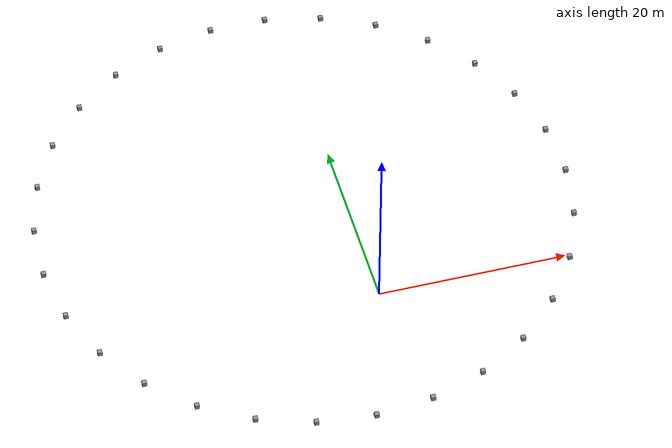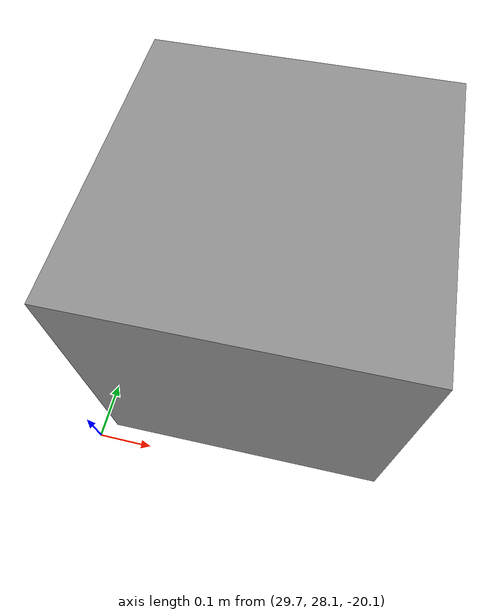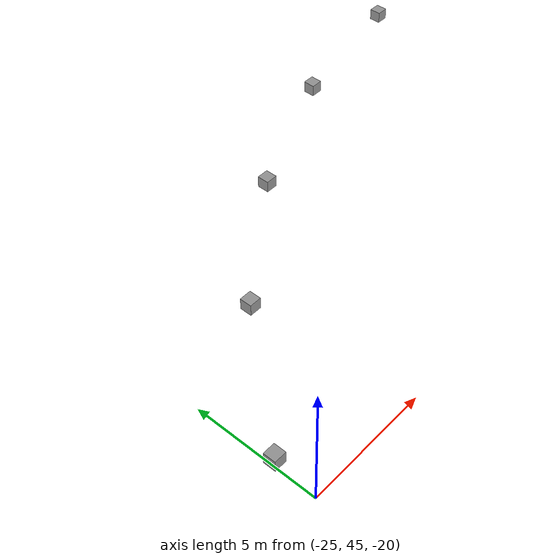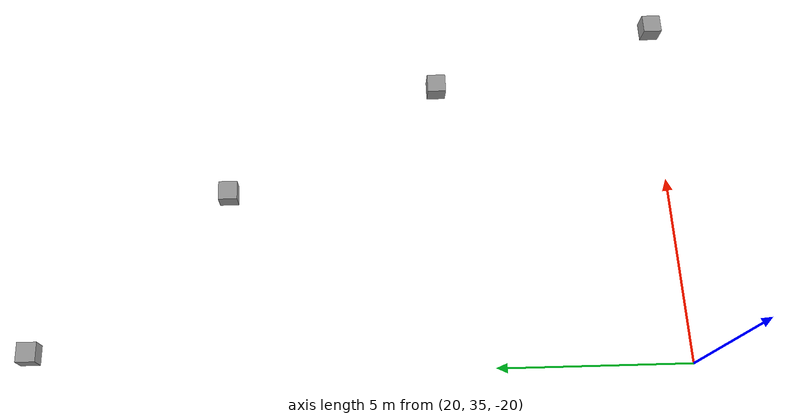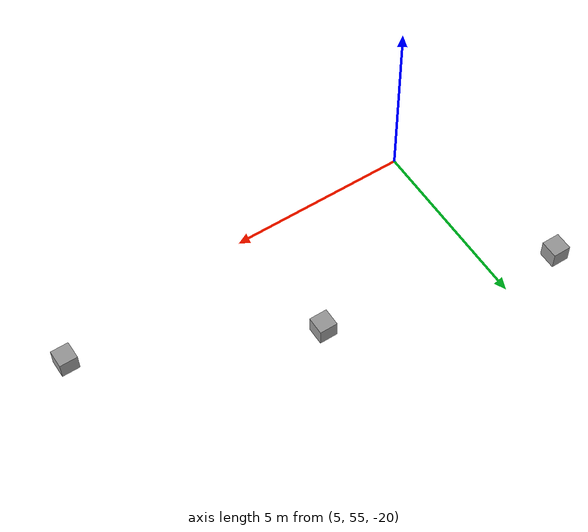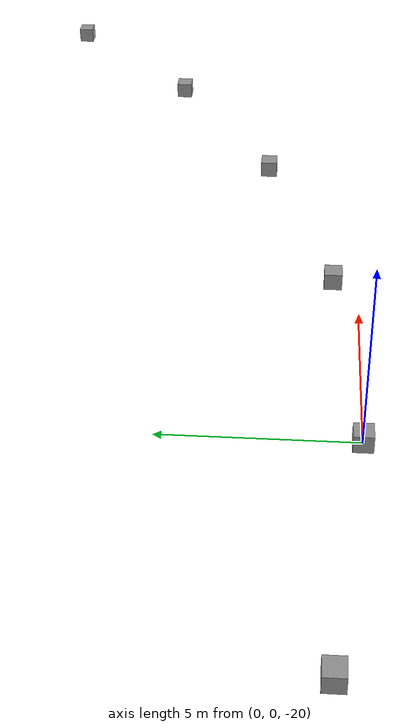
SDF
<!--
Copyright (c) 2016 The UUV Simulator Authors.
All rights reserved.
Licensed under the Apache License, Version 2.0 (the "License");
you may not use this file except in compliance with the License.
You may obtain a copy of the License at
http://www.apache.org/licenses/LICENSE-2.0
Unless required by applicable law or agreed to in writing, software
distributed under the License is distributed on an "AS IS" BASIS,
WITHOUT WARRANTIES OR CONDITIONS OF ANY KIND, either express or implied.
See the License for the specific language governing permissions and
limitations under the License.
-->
<sdf version="1.4">
 <world name="oceans_waves">
  <physics name="default_physics" default="true" type="ode">
   <max_step_size>0.002</max_step_size>
   <real_time_factor>1</real_time_factor>
   <real_time_update_rate>500</real_time_update_rate>
  </physics>
  <scene>
   <ambient>0.01 0.01 0.01 1.0</ambient>
   <sky><clouds><speed>12</speed></clouds></sky>
   <shadows>1</shadows>
  </scene>
  <spherical_coordinates>
   <latitude_deg>56.71897669633431</latitude_deg>
   <longitude_deg>3.515625</longitude_deg>
  </spherical_coordinates>
  <light type="directional" name="sun1">
   <pose>50 0 150 0 0 0</pose>
   <diffuse>1 1 1 1</diffuse>
   <specular>.1 .1 .1 1</specular>
   <direction>0.3 0.3 -1</direction>
   <cast_shadows>false</cast_shadows>
  </light>
  <light type="directional" name="sun_diffuse">
   <pose>-50 0 -150 0 0 0</pose>
   <diffuse>0.6 0.6 0.6 1</diffuse>
   <specular>0 0 0 1</specular>
   <direction>-0.3 -0.3 -1</direction>
   <cast_shadows>false</cast_shadows>
  </light>
  <model name="visual_obstacle_1">
   <pose>0.019344984088539116 0.00018805105307251324 -19.84525278614261 0 0 0</pose>
   <static>true</static>
   <link name="link">
    <visual name="visual">
     <geometry><box><size>0.5 0.5 0.5</size></box></geometry>
     <material>
      <script><uri>file://media/materials/scripts/gazebo.material</uri><name>Gazebo/Grey</name></script>
     </material>
    </visual>
   </link>
  </model>
  <model name="visual_obstacle_2">
   <pose>6.468471475318647 0.701449216353101 -19.84525278614261 0 0 0</pose>
   <static>true</static>
   <link name="link">
    <visual name="visual">
     <geometry><box><size>0.5 0.5 0.5</size></box></geometry>
     <material>
      <script><uri>file://media/materials/scripts/gazebo.material</uri><name>Gazebo/Grey</name></script>
     </material>
    </visual>
   </link>
  </model>
  <model name="visual_obstacle_3">
   <pose>12.616070551621 2.77268684610263 -19.84525278614261 0 0 0</pose>
   <static>true</static>
   <link name="link">
    <visual name="visual">
     <geometry><box><size>0.5 0.5 0.5</size></box></geometry>
     <material>
      <script><uri>file://media/materials/scripts/gazebo.material</uri><name>Gazebo/Grey</name></script>
     </material>
    </visual>
   </link>
  </model>
  <model name="visual_obstacle_4">
   <pose>18.17468731275332 6.1170521707498615 -19.84525278614261 0 0 0</pose>
   <static>true</static>
   <link name="link">
    <visual name="visual">
     <geometry><box><size>0.5 0.5 0.5</size></box></geometry>
     <material>
      <script><uri>file://media/materials/scripts/gazebo.material</uri><name>Gazebo/Grey</name></script>
     </material>
    </visual>
   </link>
  </model>
  <model name="visual_obstacle_5">
   <pose>22.88440701692387 10.578166384709377 -19.84525278614261 0 0 0</pose>
   <static>true</static>
   <link name="link">
    <visual name="visual">
     <geometry><box><size>0.5 0.5 0.5</size></box></geometry>
     <material>
      <script><uri>file://media/materials/scripts/gazebo.material</uri><name>Gazebo/Grey</name></script>
     </material>
    </visual>
   </link>
  </model>
  <model name="visual_obstacle_6">
   <pose>26.52500840524313 15.947432745508767 -19.84525278614261 0 0 0</pose>
   <static>true</static>
   <link name="link">
    <visual name="visual">
     <geometry><box><size>0.5 0.5 0.5</size></box></geometry>
     <material>
      <script><uri>file://media/materials/scripts/gazebo.material</uri><name>Gazebo/Grey</name></script>
     </material>
    </visual>
   </link>
  </model>
  <model name="visual_obstacle_7">
   <pose>28.926261003031104 21.973790325627995 -19.84525278614261 0 0 0</pose>
   <static>true</static>
   <link name="link">
    <visual name="visual">
     <geometry><box><size>0.5 0.5 0.5</size></box></geometry>
     <material>
      <script><uri>file://media/materials/scripts/gazebo.material</uri><name>Gazebo/Grey</name></script>
     </material>
    </visual>
   </link>
  </model>
  <model name="visual_obstacle_8">
   <pose>29.975884907615814 28.37545334243607 -19.84525278614261 0 0 0</pose>
   <static>true</static>
   <link name="link">
    <visual name="visual">
     <geometry><box><size>0.5 0.5 0.5</size></box></geometry>
     <material>
      <script><uri>file://media/materials/scripts/gazebo.material</uri><name>Gazebo/Grey</name></script>
     </material>
    </visual>
   </link>
  </model>
  <model name="visual_obstacle_9">
   <pose>29.624800871792065 34.85308714820447 -19.84525278614261 0 0 0</pose>
   <static>true</static>
   <link name="link">
    <visual name="visual">
     <geometry><box><size>0.5 0.5 0.5</size></box></geometry>
     <material>
      <script><uri>file://media/materials/scripts/gazebo.material</uri><name>Gazebo/Grey</name></script>
     </material>
    </visual>
   </link>
  </model>
  <model name="visual_obstacle_10">
   <pose>27.889425194873088 41.10380478554836 -19.84525278614261 0 0 0</pose>
   <static>true</static>
   <link name="link">
    <visual name="visual">
     <geometry><box><size>0.5 0.5 0.5</size></box></geometry>
     <material>
      <script><uri>file://media/materials/scripts/gazebo.material</uri><name>Gazebo/Grey</name></script>
     </material>
    </visual>
   </link>
  </model>
  <model name="visual_obstacle_11">
   <pose>24.85090211478008 46.835329644919206 -19.84525278614261 0 0 0</pose>
   <static>true</static>
   <link name="link">
    <visual name="visual">
     <geometry><box><size>0.5 0.5 0.5</size></box></geometry>
     <material>
      <script><uri>file://media/materials/scripts/gazebo.material</uri><name>Gazebo/Grey</name></script>
     </material>
    </visual>
   </link>
  </model>
  <model name="visual_obstacle_12">
   <pose>20.651309593662344 51.7796619940252 -19.84525278614261 0 0 0</pose>
   <static>true</static>
   <link name="link">
    <visual name="visual">
     <geometry><box><size>0.5 0.5 0.5</size></box></geometry>
     <material>
      <script><uri>file://media/materials/scripts/gazebo.material</uri><name>Gazebo/Grey</name></script>
     </material>
    </visual>
   </link>
  </model>
  <model name="visual_obstacle_13">
   <pose>15.487015910295494 55.70561034745285 -19.84525278614261 0 0 0</pose>
   <static>true</static>
   <link name="link">
    <visual name="visual">
     <geometry><box><size>0.5 0.5 0.5</size></box></geometry>
     <material>
      <script><uri>file://media/materials/scripts/gazebo.material</uri><name>Gazebo/Grey</name></script>
     </material>
    </visual>
   </link>
  </model>
  <model name="visual_obstacle_14">
   <pose>9.59949769761358 58.429601723574066 -19.84525278614261 0 0 0</pose>
   <static>true</static>
   <link name="link">
    <visual name="visual">
     <geometry><box><size>0.5 0.5 0.5</size></box></geometry>
     <material>
      <script><uri>file://media/materials/scripts/gazebo.material</uri><name>Gazebo/Grey</name></script>
     </material>
    </visual>
   </link>
  </model>
  <model name="visual_obstacle_15">
   <pose>3.2640487637351163 59.8242653131404 -19.84525278614261 0 0 0</pose>
   <static>true</static>
   <link name="link">
    <visual name="visual">
     <geometry><box><size>0.5 0.5 0.5</size></box></geometry>
     <material>
      <script><uri>file://media/materials/scripts/gazebo.material</uri><name>Gazebo/Grey</name></script>
     </material>
    </visual>
   </link>
  </model>
  <model name="visual_obstacle_16">
   <pose>-3.2230923405375345 59.82438819676099 -19.84525278614261 0 0 0</pose>
   <static>true</static>
   <link name="link">
    <visual name="visual">
     <geometry><box><size>0.5 0.5 0.5</size></box></geometry>
     <material>
      <script><uri>file://media/materials/scripts/gazebo.material</uri><name>Gazebo/Grey</name></script>
     </material>
    </visual>
   </link>
  </model>
  <model name="visual_obstacle_17">
   <pose>-9.558594107108036 58.42996462853429 -19.84525278614261 0 0 0</pose>
   <static>true</static>
   <link name="link">
    <visual name="visual">
     <geometry><box><size>0.5 0.5 0.5</size></box></geometry>
     <material>
      <script><uri>file://media/materials/scripts/gazebo.material</uri><name>Gazebo/Grey</name></script>
     </material>
    </visual>
   </link>
  </model>
  <model name="visual_obstacle_18">
   <pose>-15.44621551477602 55.70619630472012 -19.84525278614261 0 0 0</pose>
   <static>true</static>
   <link name="link">
    <visual name="visual">
     <geometry><box><size>0.5 0.5 0.5</size></box></geometry>
     <material>
      <script><uri>file://media/materials/scripts/gazebo.material</uri><name>Gazebo/Grey</name></script>
     </material>
    </visual>
   </link>
  </model>
  <model name="visual_obstacle_19">
   <pose>-20.610657930140178 51.78044360488894 -19.84525278614261 0 0 0</pose>
   <static>true</static>
   <link name="link">
    <visual name="visual">
     <geometry><box><size>0.5 0.5 0.5</size></box></geometry>
     <material>
      <script><uri>file://media/materials/scripts/gazebo.material</uri><name>Gazebo/Grey</name></script>
     </material>
    </visual>
   </link>
  </model>
  <model name="visual_obstacle_20">
   <pose>-24.81043776572352 46.83627036212414 -19.84525278614261 0 0 0</pose>
   <static>true</static>
   <link name="link">
    <visual name="visual">
     <geometry><box><size>0.5 0.5 0.5</size></box></geometry>
     <material>
      <script><uri>file://media/materials/scripts/gazebo.material</uri><name>Gazebo/Grey</name></script>
     </material>
    </visual>
   </link>
  </model>
  <model name="visual_obstacle_21">
   <pose>-27.849177984134233 41.104860622203496 -19.84525278614261 0 0 0</pose>
   <static>true</static>
   <link name="link">
    <visual name="visual">
     <geometry><box><size>0.5 0.5 0.5</size></box></geometry>
     <material>
      <script><uri>file://media/materials/scripts/gazebo.material</uri><name>Gazebo/Grey</name></script>
     </material>
    </visual>
   </link>
  </model>
  <model name="visual_obstacle_22">
   <pose>-29.584790470076598 34.8542087345613 -19.84525278614261 0 0 0</pose>
   <static>true</static>
   <link name="link">
    <visual name="visual">
     <geometry><box><size>0.5 0.5 0.5</size></box></geometry>
     <material>
      <script><uri>file://media/materials/scripts/gazebo.material</uri><name>Gazebo/Grey</name></script>
     </material>
    </visual>
   </link>
  </model>
  <model name="visual_obstacle_23">
   <pose>-29.93611991270269 28.37658823436312 -19.84525278614261 0 0 0</pose>
   <static>true</static>
   <link name="link">
    <visual name="visual">
     <geometry><box><size>0.5 0.5 0.5</size></box></geometry>
     <material>
      <script><uri>file://media/materials/scripts/gazebo.material</uri><name>Gazebo/Grey</name></script>
     </material>
    </visual>
   </link>
  </model>
  <model name="visual_obstacle_24">
   <pose>-28.88673853774993 21.97488545684005 -19.84525278614261 0 0 0</pose>
   <static>true</static>
   <link name="link">
    <visual name="visual">
     <geometry><box><size>0.5 0.5 0.5</size></box></geometry>
     <material>
      <script><uri>file://media/materials/scripts/gazebo.material</uri><name>Gazebo/Grey</name></script>
     </material>
    </visual>
   </link>
  </model>
  <model name="visual_obstacle_25">
   <pose>-26.4857142520075 15.948436908887556 -19.84525278614261 0 0 0</pose>
   <static>true</static>
   <link name="link">
    <visual name="visual">
     <geometry><box><size>0.5 0.5 0.5</size></box></geometry>
     <material>
      <script><uri>file://media/materials/scripts/gazebo.material</uri><name>Gazebo/Grey</name></script>
     </material>
    </visual>
   </link>
  </model>
  <model name="visual_obstacle_26">
   <pose>-22.845316282529865 10.579032626691333 -19.84525278614261 0 0 0</pose>
   <static>true</static>
   <link name="link">
    <visual name="visual">
     <geometry><box><size>0.5 0.5 0.5</size></box></geometry>
     <material>
      <script><uri>file://media/materials/scripts/gazebo.material</uri><name>Gazebo/Grey</name></script>
     </material>
    </visual>
   </link>
  </model>
  <model name="visual_obstacle_27">
   <pose>-18.13576559235807 6.117739986822663 -19.84525278614261 0 0 0</pose>
   <static>true</static>
   <link name="link">
    <visual name="visual">
     <geometry><box><size>0.5 0.5 0.5</size></box></geometry>
     <material>
      <script><uri>file://media/materials/scripts/gazebo.material</uri><name>Gazebo/Grey</name></script>
     </material>
    </visual>
   </link>
  </model>
  <model name="visual_obstacle_28">
   <pose>-12.577275537474897 2.7731640747511683 -19.84525278614261 0 0 0</pose>
   <static>true</static>
   <link name="link">
    <visual name="visual">
     <geometry><box><size>0.5 0.5 0.5</size></box></geometry>
     <material>
      <script><uri>file://media/materials/scripts/gazebo.material</uri><name>Gazebo/Grey</name></script>
     </material>
    </visual>
   </link>
  </model>
  <model name="visual_obstacle_29">
   <pose>-6.429754935028707 0.701693542896173 -19.84525278614261 0 0 0</pose>
   <static>true</static>
   <link name="link">
    <visual name="visual">
     <geometry><box><size>0.5 0.5 0.5</size></box></geometry>
     <material>
      <script><uri>file://media/materials/scripts/gazebo.material</uri><name>Gazebo/Grey</name></script>
     </material>
    </visual>
   </link>
  </model>
  <model name="visual_obstacle_30">
   <pose>0.019344984088531768 0.00018805105307251324 -19.84525278614261 0 0 0</pose>
   <static>true</static>
   <link name="link">
    <visual name="visual">
     <geometry><box><size>0.5 0.5 0.5</size></box></geometry>
     <material>
      <script><uri>file://media/materials/scripts/gazebo.material</uri><name>Gazebo/Grey</name></script>
     </material>
    </visual>
   </link>
  </model>
  <plugin name="underwater_current_plugin" filename="libuuv_underwater_current_ros_plugin.so">
   <namespace>hydrodynamics</namespace>
   <constant_current>
    <topic>current_velocity</topic>
    <velocity><mean>0</mean><min>0</min><max>5</max><mu>0.0</mu><noiseAmp>0.0</noiseAmp></velocity>
    <horizontal_angle>
     <mean>0</mean>
     <min>-3.141592653589793238</min>
     <max>3.141592653589793238</max>
     <mu>0.0</mu>
     <noiseAmp>0.0</noiseAmp>
    </horizontal_angle>
    <vertical_angle>
     <mean>0</mean>
     <min>-3.141592653589793238</min>
     <max>3.141592653589793238</max>
     <mu>0.0</mu>
     <noiseAmp>0.0</noiseAmp>
    </vertical_angle>
   </constant_current>
  </plugin>
  <plugin name="sc_interface" filename="libuuv_sc_ros_interface_plugin.so"/>
 </world>
</sdf>
